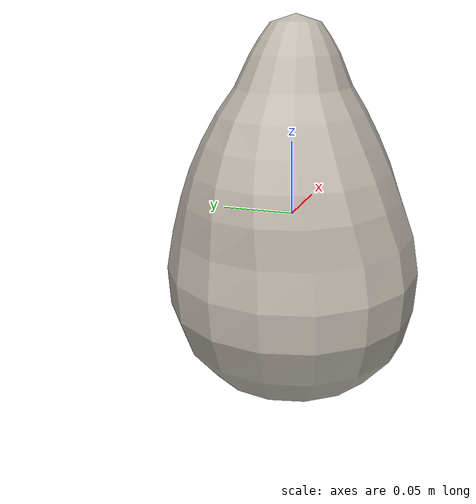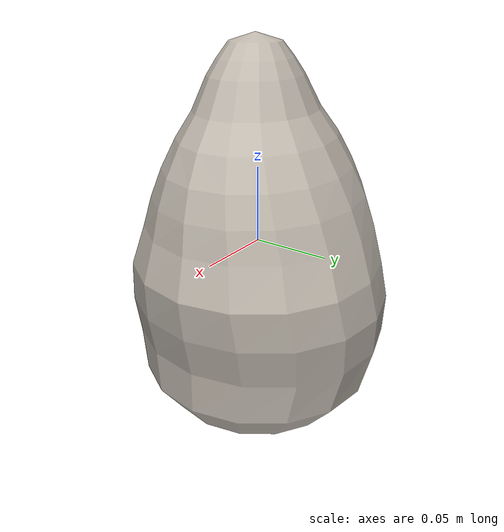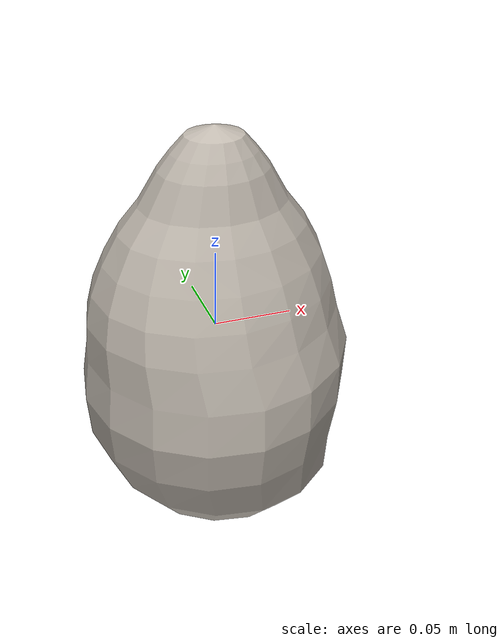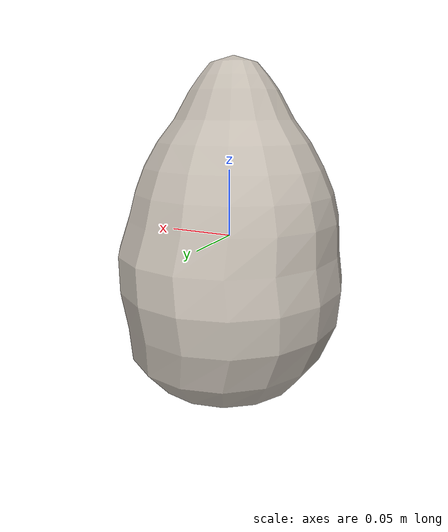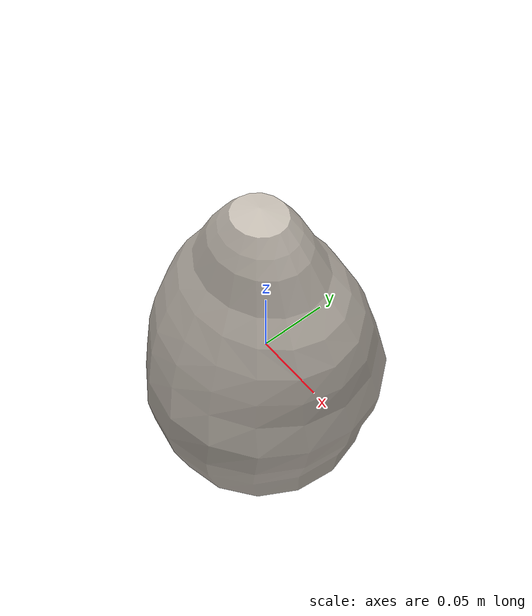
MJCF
<mujoco model="Lettuce_19">
  <compiler autolimits="true" boundmass="0.01" angle="radian"/>
  <default>
    <default class="/">
      <default class="__VISUAL_MJT__">
        <geom contype="0" conaffinity="0" group="0"/>
      </default>
      <default class="__STRUCTURAL_MJT__">
        <geom contype="8" conaffinity="15" group="4" friction="0.90000000000000002 0.90000000000000002 0.001" solref="0.025000000000000001 1" solimp="0.998 0.998 0.001"/>
      </default>
      <default class="__DYNAMIC_MJT__">
        <geom contype="1" conaffinity="15" group="4" friction="0.90000000000000002 0.90000000000000002 0.001" solref="0.025000000000000001 1" solimp="0.998 0.998 0.001"/>
      </default>
    </default>
  </default>
  <asset>
    <texture name="Lettuce2_Mat" type="2d" file="Lettuce2_AlbedoTransparency.png"/>
    <material name="material_Lettuce2_Mat" class="/" texture="Lettuce2_Mat" specular="0.5" shininess="0.5" rgba="1 1 1 1"/>
    <mesh name="Lettuce_19_lettuce_b9" class="/" file="Lettuce_19_lettuce_b9/Lettuce_19_lettuce_b9.obj" scale="1 1 1"/>
  </asset>
  <worldbody>
    <body name="Lettuce_19">
      <joint name="Lettuce_19_free" class="/" type="free" pos="0 0 0" axis="0 0 1" stiffness="0" range="0 0" armature="0" damping="0.10000000000000001" frictionloss="0"/>
      <body name="Lettuce_19_lettuce_b9" pos="-0.00066 -0.00044999999999999999 0.01336" quat="1 0 0 0">
        <geom name="Lettuce_19_lettuce_b9" class="__VISUAL_MJT__" type="mesh" material="material_Lettuce2_Mat" shellinertia="true" mesh="Lettuce_19_lettuce_b9"/>
        <geom name="Lettuce_19_PrimitiveCollider_0" class="__DYNAMIC_MJT__" type="capsule" size="0.085032641887664795 0.021278209984302521" rgba="0 1 0 1" pos="-0.0006628185510635376 0.00045107165351510048 -0.03674987331032753" quat="0.99999999999891198 1.4751396607739272e-06 0 0"/>
        <geom name="Lettuce_19_PrimitiveCollider_1" class="__DYNAMIC_MJT__" type="capsule" size="0.064563170075416565 0.012913458049297333" rgba="0 1 0 1" pos="-0.0017579561099410057 -0.003349989652633667 0.021502479910850525" quat="0.99999999999891198 1.4751396607739272e-06 0 0"/>
        <geom name="Lettuce_19_PrimitiveCollider_2" class="__DYNAMIC_MJT__" type="capsule" size="0.033952713012695312 0.011699337512254715" rgba="0 1 0 1" pos="-0.0028956830501556396 -0.0010350421071052551 0.070679754018783569" quat="0.99999999999891198 1.4751396607739272e-06 0 0"/>
      </body>
    </body>
  </worldbody>
</mujoco>
